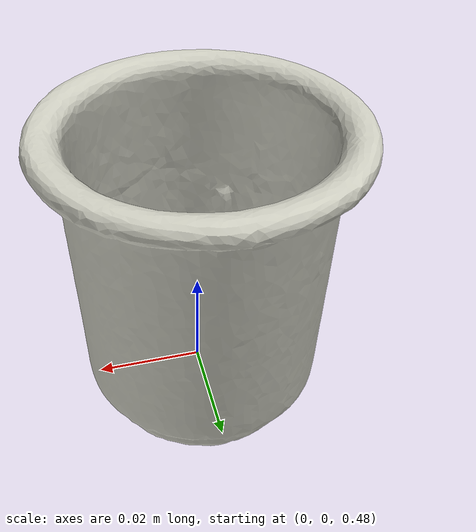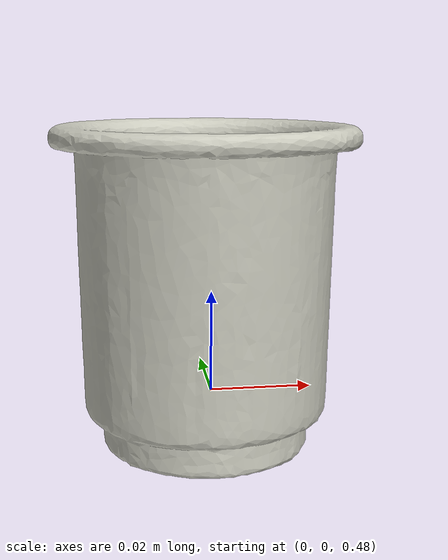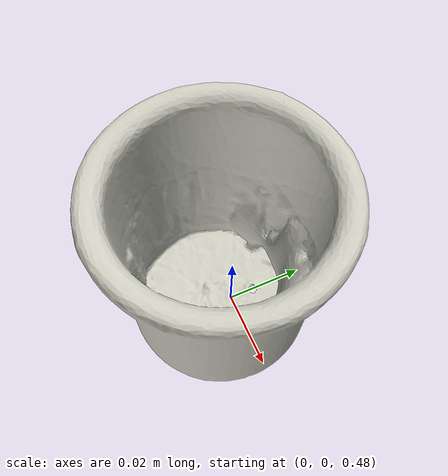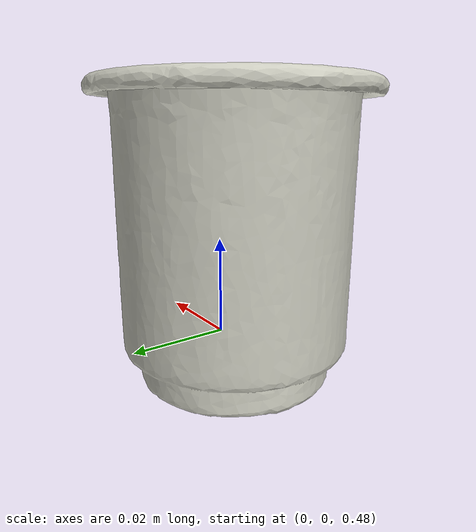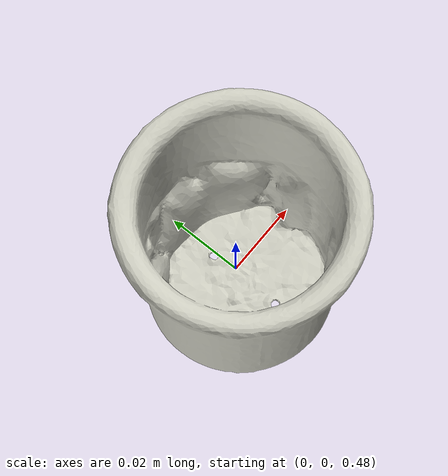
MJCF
<mujoco>
  <asset>
    <mesh name="065_a_cups_visual" file="objects/065-a_cups/visual.stl" />
    <mesh name="065_a_cups_col_00" file="objects/065-a_cups/collision/065-a_cups_00.stl" />
    <mesh name="065_a_cups_col_01" file="objects/065-a_cups/collision/065-a_cups_01.stl" />
    <mesh name="065_a_cups_col_02" file="objects/065-a_cups/collision/065-a_cups_02.stl" />
    <mesh name="065_a_cups_col_03" file="objects/065-a_cups/collision/065-a_cups_03.stl" />
    <mesh name="065_a_cups_col_04" file="objects/065-a_cups/collision/065-a_cups_04.stl" />
    <mesh name="065_a_cups_col_05" file="objects/065-a_cups/collision/065-a_cups_05.stl" />
    <mesh name="065_a_cups_col_06" file="objects/065-a_cups/collision/065-a_cups_06.stl" />
    <mesh name="065_a_cups_col_07" file="objects/065-a_cups/collision/065-a_cups_07.stl" />
    <mesh name="065_a_cups_col_08" file="objects/065-a_cups/collision/065-a_cups_08.stl" />
    <mesh name="065_a_cups_col_09" file="objects/065-a_cups/collision/065-a_cups_09.stl" />
    <mesh name="065_a_cups_col_10" file="objects/065-a_cups/collision/065-a_cups_10.stl" />
    <mesh name="065_a_cups_col_11" file="objects/065-a_cups/collision/065-a_cups_11.stl" />
    <mesh name="065_a_cups_col_12" file="objects/065-a_cups/collision/065-a_cups_12.stl" />
    <mesh name="065_a_cups_col_13" file="objects/065-a_cups/collision/065-a_cups_13.stl" />
    <mesh name="065_a_cups_col_14" file="objects/065-a_cups/collision/065-a_cups_14.stl" />
    <mesh name="065_a_cups_col_15" file="objects/065-a_cups/collision/065-a_cups_15.stl" />
    <mesh name="065_a_cups_col_16" file="objects/065-a_cups/collision/065-a_cups_16.stl" />
    <mesh name="065_a_cups_col_17" file="objects/065-a_cups/collision/065-a_cups_17.stl" />
    <mesh name="065_a_cups_col_18" file="objects/065-a_cups/collision/065-a_cups_18.stl" />
    <mesh name="065_a_cups_col_19" file="objects/065-a_cups/collision/065-a_cups_19.stl" />
    <mesh name="065_a_cups_col_20" file="objects/065-a_cups/collision/065-a_cups_20.stl" />
    <mesh name="065_a_cups_col_21" file="objects/065-a_cups/collision/065-a_cups_21.stl" />
    <mesh name="065_a_cups_col_22" file="objects/065-a_cups/collision/065-a_cups_22.stl" />
    <mesh name="065_a_cups_col_23" file="objects/065-a_cups/collision/065-a_cups_23.stl" />
    <mesh name="065_a_cups_col_24" file="objects/065-a_cups/collision/065-a_cups_24.stl" />
    <mesh name="065_a_cups_col_25" file="objects/065-a_cups/collision/065-a_cups_25.stl" />
    <mesh name="065_a_cups_col_26" file="objects/065-a_cups/collision/065-a_cups_26.stl" />
    <mesh name="065_a_cups_col_27" file="objects/065-a_cups/collision/065-a_cups_27.stl" />
    <mesh name="065_a_cups_col_28" file="objects/065-a_cups/collision/065-a_cups_28.stl" />
    <mesh name="065_a_cups_col_29" file="objects/065-a_cups/collision/065-a_cups_29.stl" />
    <mesh name="065_a_cups_col_30" file="objects/065-a_cups/collision/065-a_cups_30.stl" />
    <mesh name="065_a_cups_col_31" file="objects/065-a_cups/collision/065-a_cups_31.stl" />
  </asset>
  <worldbody>
    <body name="065_a_cups" pos="0 0 0.5">
      <freejoint name="065_a_cups_free" />
      <geom type="mesh" mesh="065_a_cups_visual" contype="0" conaffinity="0" group="2" rgba="0.8 0.8 0.75 1" />
      <geom type="mesh" mesh="065_a_cups_col_00" group="3" condim="4" friction="0.8 0.01 0.001" density="1000" solref="0.005 1" solimp="0.9 0.98 0.001" />
      <geom type="mesh" mesh="065_a_cups_col_01" group="3" condim="4" friction="0.8 0.01 0.001" density="1000" solref="0.005 1" solimp="0.9 0.98 0.001" />
      <geom type="mesh" mesh="065_a_cups_col_02" group="3" condim="4" friction="0.8 0.01 0.001" density="1000" solref="0.005 1" solimp="0.9 0.98 0.001" />
      <geom type="mesh" mesh="065_a_cups_col_03" group="3" condim="4" friction="0.8 0.01 0.001" density="1000" solref="0.005 1" solimp="0.9 0.98 0.001" />
      <geom type="mesh" mesh="065_a_cups_col_04" group="3" condim="4" friction="0.8 0.01 0.001" density="1000" solref="0.005 1" solimp="0.9 0.98 0.001" />
      <geom type="mesh" mesh="065_a_cups_col_05" group="3" condim="4" friction="0.8 0.01 0.001" density="1000" solref="0.005 1" solimp="0.9 0.98 0.001" />
      <geom type="mesh" mesh="065_a_cups_col_06" group="3" condim="4" friction="0.8 0.01 0.001" density="1000" solref="0.005 1" solimp="0.9 0.98 0.001" />
      <geom type="mesh" mesh="065_a_cups_col_07" group="3" condim="4" friction="0.8 0.01 0.001" density="1000" solref="0.005 1" solimp="0.9 0.98 0.001" />
      <geom type="mesh" mesh="065_a_cups_col_08" group="3" condim="4" friction="0.8 0.01 0.001" density="1000" solref="0.005 1" solimp="0.9 0.98 0.001" />
      <geom type="mesh" mesh="065_a_cups_col_09" group="3" condim="4" friction="0.8 0.01 0.001" density="1000" solref="0.005 1" solimp="0.9 0.98 0.001" />
      <geom type="mesh" mesh="065_a_cups_col_10" group="3" condim="4" friction="0.8 0.01 0.001" density="1000" solref="0.005 1" solimp="0.9 0.98 0.001" />
      <geom type="mesh" mesh="065_a_cups_col_11" group="3" condim="4" friction="0.8 0.01 0.001" density="1000" solref="0.005 1" solimp="0.9 0.98 0.001" />
      <geom type="mesh" mesh="065_a_cups_col_12" group="3" condim="4" friction="0.8 0.01 0.001" density="1000" solref="0.005 1" solimp="0.9 0.98 0.001" />
      <geom type="mesh" mesh="065_a_cups_col_13" group="3" condim="4" friction="0.8 0.01 0.001" density="1000" solref="0.005 1" solimp="0.9 0.98 0.001" />
      <geom type="mesh" mesh="065_a_cups_col_14" group="3" condim="4" friction="0.8 0.01 0.001" density="1000" solref="0.005 1" solimp="0.9 0.98 0.001" />
      <geom type="mesh" mesh="065_a_cups_col_15" group="3" condim="4" friction="0.8 0.01 0.001" density="1000" solref="0.005 1" solimp="0.9 0.98 0.001" />
      <geom type="mesh" mesh="065_a_cups_col_16" group="3" condim="4" friction="0.8 0.01 0.001" density="1000" solref="0.005 1" solimp="0.9 0.98 0.001" />
      <geom type="mesh" mesh="065_a_cups_col_17" group="3" condim="4" friction="0.8 0.01 0.001" density="1000" solref="0.005 1" solimp="0.9 0.98 0.001" />
      <geom type="mesh" mesh="065_a_cups_col_18" group="3" condim="4" friction="0.8 0.01 0.001" density="1000" solref="0.005 1" solimp="0.9 0.98 0.001" />
      <geom type="mesh" mesh="065_a_cups_col_19" group="3" condim="4" friction="0.8 0.01 0.001" density="1000" solref="0.005 1" solimp="0.9 0.98 0.001" />
      <geom type="mesh" mesh="065_a_cups_col_20" group="3" condim="4" friction="0.8 0.01 0.001" density="1000" solref="0.005 1" solimp="0.9 0.98 0.001" />
      <geom type="mesh" mesh="065_a_cups_col_21" group="3" condim="4" friction="0.8 0.01 0.001" density="1000" solref="0.005 1" solimp="0.9 0.98 0.001" />
      <geom type="mesh" mesh="065_a_cups_col_22" group="3" condim="4" friction="0.8 0.01 0.001" density="1000" solref="0.005 1" solimp="0.9 0.98 0.001" />
      <geom type="mesh" mesh="065_a_cups_col_23" group="3" condim="4" friction="0.8 0.01 0.001" density="1000" solref="0.005 1" solimp="0.9 0.98 0.001" />
      <geom type="mesh" mesh="065_a_cups_col_24" group="3" condim="4" friction="0.8 0.01 0.001" density="1000" solref="0.005 1" solimp="0.9 0.98 0.001" />
      <geom type="mesh" mesh="065_a_cups_col_25" group="3" condim="4" friction="0.8 0.01 0.001" density="1000" solref="0.005 1" solimp="0.9 0.98 0.001" />
      <geom type="mesh" mesh="065_a_cups_col_26" group="3" condim="4" friction="0.8 0.01 0.001" density="1000" solref="0.005 1" solimp="0.9 0.98 0.001" />
      <geom type="mesh" mesh="065_a_cups_col_27" group="3" condim="4" friction="0.8 0.01 0.001" density="1000" solref="0.005 1" solimp="0.9 0.98 0.001" />
      <geom type="mesh" mesh="065_a_cups_col_28" group="3" condim="4" friction="0.8 0.01 0.001" density="1000" solref="0.005 1" solimp="0.9 0.98 0.001" />
      <geom type="mesh" mesh="065_a_cups_col_29" group="3" condim="4" friction="0.8 0.01 0.001" density="1000" solref="0.005 1" solimp="0.9 0.98 0.001" />
      <geom type="mesh" mesh="065_a_cups_col_30" group="3" condim="4" friction="0.8 0.01 0.001" density="1000" solref="0.005 1" solimp="0.9 0.98 0.001" />
      <geom type="mesh" mesh="065_a_cups_col_31" group="3" condim="4" friction="0.8 0.01 0.001" density="1000" solref="0.005 1" solimp="0.9 0.98 0.001" />
    </body>
  </worldbody>
</mujoco>
